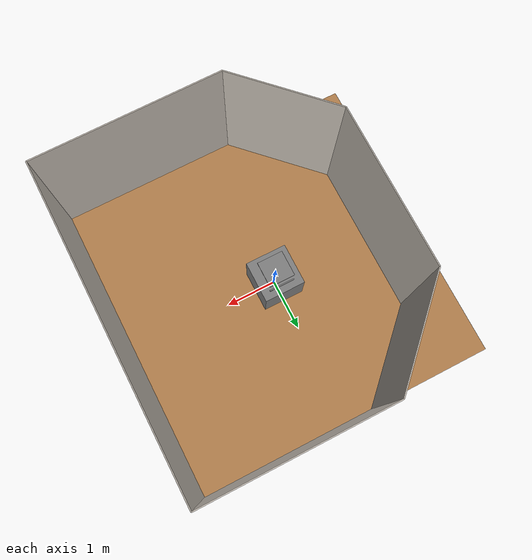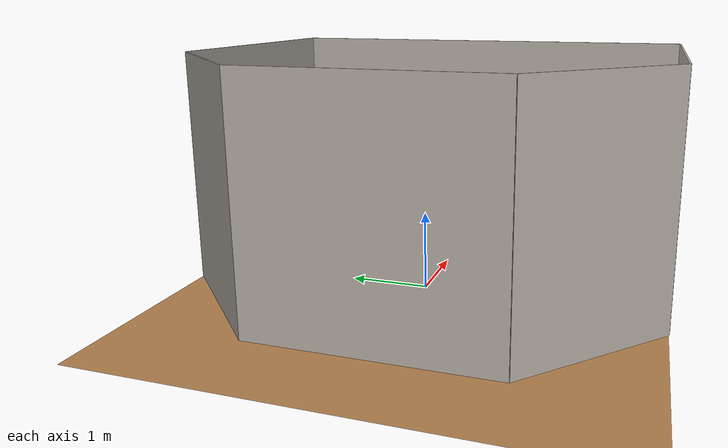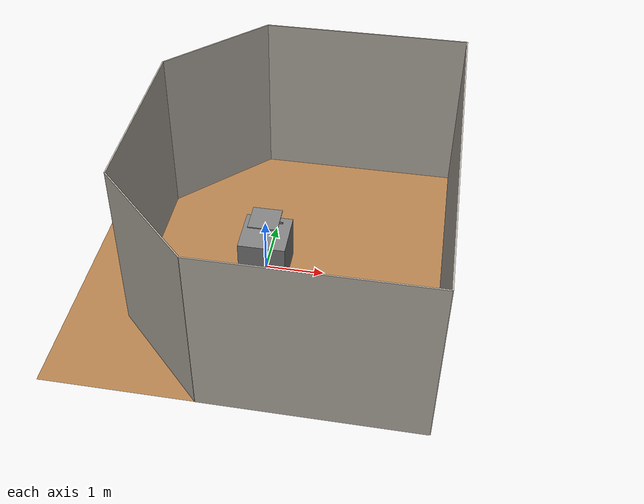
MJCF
<mujoco model="cabinet_arena">
  <asset>
    <texture builtin="gradient" height="256" rgb1=".9 .9 1." rgb2=".2 .3 .4" type="skybox" width="256"/>
    <texture file="../textures/wood-tiles.png" type="2d" name="texplane"/>
    <material name="floorplane" reflectance="0.01" shininess="0.0" specular="0.0" texrepeat="2 2" texture="texplane" texuniform="true"/>
    <!-- ceramic table texture and material-->
    <texture file="../textures/ceramic.png" type="cube" name="tex-ceramic"/>
    <material name="table_ceramic" reflectance="0.0" shininess="0.0" specular="0.2" texrepeat="1 1" texture="tex-ceramic" />
    <!-- steel legs -->
    <texture file="../textures/steel-brushed.png" type="cube" name="tex-steel-brushed"/>
    <material name="table_legs_metal" reflectance="0.8" shininess="0.8" texrepeat="1 1" texture="tex-steel-brushed" />
    <!-- plaster walls -->
    <texture file="../textures/cream-plaster.png" type="2d" name="tex-cream-plaster"/>
    <material name="walls_mat" reflectance="0.0" shininess="0.1" specular="0.1" texrepeat="3 3" texture="tex-cream-plaster" texuniform="true" />
    <!-- added table texture and material for domain randomization -->
    <texture  name="textable" builtin="flat" height="512" width="512" rgb1="0.5 0.5 0.5" rgb2="0.5 0.5 0.5"/>
    <material name="table_mat" texture="textable" />

    <mesh name="cabinet" file="meshes/kitchen_cabinet.stl" />

  </asset>
  <worldbody>
    <!-- Floor -->
    <geom condim="3" material="floorplane" name="floor" pos="0 0 0" size="3 3 .125" type="plane"/>
    <!-- Walls (visual only) -->
    <geom pos="-1.25 2.25 1.5" quat="0.6532815 0.6532815 0.2705981 0.2705981" size="1.06 1.5 0.01" type="box" conaffinity="0" contype="0" group="1" name="wall_leftcorner_visual" material="walls_mat"/>
    <geom pos="-1.25 -2.25 1.5" quat="0.6532815 0.6532815 -0.2705981 -0.2705981" size="1.06 1.5 0.01" type="box" conaffinity="0" contype="0" group="1" name="wall_rightcorner_visual" material="walls_mat"/>
    <geom pos="1.25 3 1.5" quat="0.7071 0.7071 0 0" size="1.75 1.5 0.01" type="box" conaffinity="0" contype="0" group="1" name="wall_left_visual" material="walls_mat"/>
    <geom pos="1.25 -3 1.5" quat="0.7071 -0.7071 0 0" size="1.75 1.5 0.01" type="box" conaffinity="0" contype="0" group="1" name="wall_right_visual" material="walls_mat"/>
    <geom pos="-2 0 1.5" quat="0.5 0.5 0.5 0.5" size="1.5 1.5 0.01" type="box" conaffinity="0" contype="0" group="1" name="wall_rear_visual" material="walls_mat"/>
    <geom pos="3 0 1.5" quat="0.5 0.5 -0.5 -0.5" size="3 1.5 0.01" type="box" conaffinity="0" contype="0" group="1" name="wall_front_visual" material="walls_mat"/>
    <!-- Table body -->
    <body name="table" pos="0 0 0.4">
      <geom pos="0 0 0" size="0.4 0.4 0.4" type="box" group="0" name="table_collision" friction="1 0.005 0.0001"/>
      <geom pos="0 0 0" size="0.4 0.4 0.4" type="box" conaffinity="0" contype="0" group="1" name="table_visual" material="table_ceramic"/>
      <geom pos="0 0.26 0.08" size="0.25 0.01 0.35" type="box" group="0" name="cabinet_collision" friction="1 0.005 0.0001"/>
      <geom pos="0 -0.26 0.08" size="0.25 0.01 0.08" type="box" group="0" name="cabinet_collision1" friction="1 0.005 0.0001"/>
      <geom pos="0 0 0.7" size="0.25 0.25 0.01" type="box" group="0" name="cabinet_collision2" friction="1 0.005 0.0001"/>
      <geom pos="0.25 0 0.08" size="0.01 0.25 0.08" type="box" group="0" name="cabinet_collision3" friction="1 0.005 0.0001"/>
      <geom pos="0 0.26 0.08" size="0.25 0.01 0.08" type="box" conaffinity="0" contype="0" group="1" name="cabinet_visual" material="table_ceramic"/>
      <geom pos="0 -0.26 0.08" size="0.25 0.01 0.08" type="box" conaffinity="0" contype="0" group="1" name="cabinet_visual1" material="table_ceramic"/>
      <geom pos="0 0 0.16" size="0.25 0.25 0.01" type="box" conaffinity="0" contype="0" group="1" name="cabinet_visual2" rgba="0 0.05 0.3 0.2"/>
      <geom pos="0.25 0 0.08" size="0.01 0.25 0.08" type="box" conaffinity="0" contype="0" group="1" name="cabinet_visual3" material="table_ceramic"/>

      <site pos="0 0 0.4" name="table_top" size="0.001 0.001 0.001" rgba="0 0 0 0"/>
      <!-- Legs (visual only) -->
      <geom pos="0 0 0" size="0.05 0.1" type="cylinder" conaffinity="0" contype="0" group="1" name="table_leg1_visual" material="table_legs_metal"/>
      <geom pos="0 0 0" size="0.05 0.1" type="cylinder" conaffinity="0" contype="0" group="1" name="table_leg2_visual" material="table_legs_metal"/>
      <geom pos="0 0 0" size="0.05 0.1" type="cylinder" conaffinity="0" contype="0" group="1" name="table_leg3_visual" material="table_legs_metal"/>
      <geom pos="0 0 0" size="0.05 0.1" type="cylinder" conaffinity="0" contype="0" group="1" name="table_leg4_visual" material="table_legs_metal"/>
    </body>

    <light name="light1" diffuse=".8 .8 .8" dir="0 -.15 -1" directional="false" pos="1 1 4.0" specular="0.3 0.3 0.3" castshadow="false"/>
    <light name="light2" diffuse=".8 .8 .8" dir="0 -.15 -1" directional="false" pos="-3. -3. 4.0" specular="0.3 0.3 0.3" castshadow="false"/>
    <!-- front view -->
    <camera mode="fixed" name="backview" pos="-0.8 -0.3 1.1" quat="0.5 0.5 -0.5 -0.5"/>
    <!-- bird view -->
    <camera mode="fixed" name="birdview" pos="0. -0.4 2.0" quat="0.7071 0 0 -0.7071"/>
    <!-- agent view -->
    <!-- side view -->
    <camera mode="fixed" name="sideview" pos="-0.05651774593317116 1.2761224129427358 1.4879572214102434" quat="0.009905065491771751 0.006877963156909582 0.5912228352893879 0.806418094001364" />
  </worldbody>
</mujoco>
